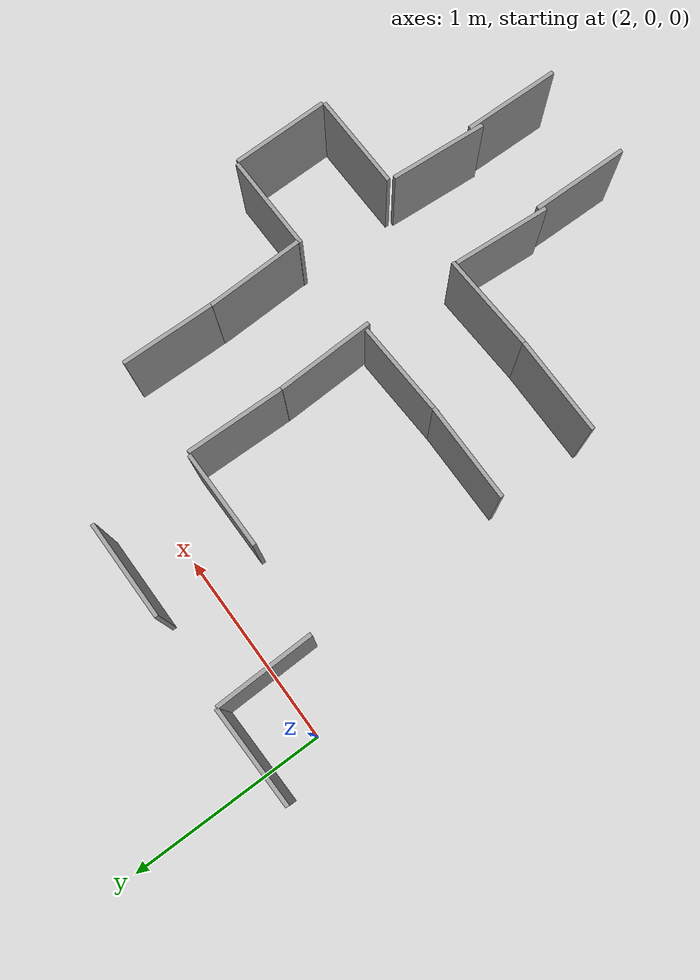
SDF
<sdf version="1.7">
 <world name="default">
  <model name="ground_plane">
   <static>1</static>
   <link name="link">
    <collision name="collision">
     <geometry><plane><normal>0 0 1</normal><size>100 100</size></plane></geometry>
     <surface><friction><ode><mu>100</mu><mu2>50</mu2></ode></friction></surface>
    </collision>
    <visual name="visual">
     <cast_shadows>0</cast_shadows>
     <geometry><plane><normal>0 0 1</normal><size>100 100</size></plane></geometry>
     <material>
      <script><uri>file://media/materials/scripts/gazebo.material</uri><name>Gazebo/Grey</name></script>
     </material>
    </visual>
   </link>
  </model>
  <model name="hsl_module_3">
   <link name="link_2_clone">
    <inertial>
     <mass>1</mass>
     <inertia><ixx>0.01</ixx><ixy>0</ixy><ixz>0</ixz><iyy>0.02</iyy><iyz>0</iyz><izz>0.01</izz></inertia>
    </inertial>
    <pose>0.212503 -0.126383 0 0 -0 0</pose>
    <visual name="visual">
     <geometry><box><size>0.5 0.02 0.5</size></box></geometry>
     <material>
      <lighting>1</lighting>
      <script><uri>file://media/materials/scripts/gazebo.material</uri><name>Gazebo/Grey</name></script>
      <shader type="pixel"><normal_map>__default__</normal_map></shader>
      <ambient>0.3 0.3 0.3 1</ambient>
      <diffuse>0.7 0.7 0.7 1</diffuse>
      <specular>0.01 0.01 0.01 1</specular>
      <emissive>0 0 0 1</emissive>
     </material>
    </visual>
    <collision name="collision">
     <geometry><box><size>0.5 0.02 0.5</size></box></geometry>
     <surface>
      <friction>
       <ode><mu>1</mu><mu2>1</mu2><fdir1>0 0 0</fdir1><slip1>0</slip1><slip2>0</slip2></ode>
       <torsional>
        <coefficient>1</coefficient>
        <patch_radius>0</patch_radius>
        <surface_radius>0</surface_radius>
        <use_patch_radius>1</use_patch_radius>
        <ode><slip>0</slip></ode>
       </torsional>
      </friction>
      <bounce><restitution_coefficient>0</restitution_coefficient><threshold>1e+06</threshold></bounce>
      <contact>
       <collide_without_contact>0</collide_without_contact>
       <collide_without_contact_bitmask>1</collide_without_contact_bitmask>
       <collide_bitmask>1</collide_bitmask>
       <ode>
        <soft_cfm>0</soft_cfm>
        <soft_erp>0.2</soft_erp>
        <kp>1e+13</kp>
        <kd>1</kd>
        <max_vel>0.01</max_vel>
        <min_depth>0</min_depth>
       </ode>
       <bullet>
        <split_impulse>1</split_impulse>
        <split_impulse_penetration_threshold>-0.01</split_impulse_penetration_threshold>
        <soft_cfm>0</soft_cfm>
        <soft_erp>0.2</soft_erp>
        <kp>1e+13</kp>
        <kd>1</kd>
       </bullet>
      </contact>
     </surface>
    </collision>
   </link>
   <link name="link_2_clone_clone">
    <inertial>
     <mass>1</mass>
     <inertia><ixx>0.01</ixx><ixy>0</ixy><ixz>0</ixz><iyy>0.02</iyy><iyz>0</iyz><izz>0.01</izz></inertia>
    </inertial>
    <pose>-0.040799 0.125917 0 0 -0 1.57298</pose>
    <visual name="visual">
     <geometry><box><size>0.5 0.02 0.5</size></box></geometry>
     <material>
      <lighting>1</lighting>
      <script><uri>file://media/materials/scripts/gazebo.material</uri><name>Gazebo/Grey</name></script>
      <shader type="pixel"><normal_map>__default__</normal_map></shader>
      <ambient>0.3 0.3 0.3 1</ambient>
      <diffuse>0.7 0.7 0.7 1</diffuse>
      <specular>0.01 0.01 0.01 1</specular>
      <emissive>0 0 0 1</emissive>
     </material>
    </visual>
    <collision name="collision">
     <geometry><box><size>0.5 0.02 0.5</size></box></geometry>
     <surface>
      <friction>
       <ode><mu>1</mu><mu2>1</mu2><fdir1>0 0 0</fdir1><slip1>0</slip1><slip2>0</slip2></ode>
       <torsional>
        <coefficient>1</coefficient>
        <patch_radius>0</patch_radius>
        <surface_radius>0</surface_radius>
        <use_patch_radius>1</use_patch_radius>
        <ode><slip>0</slip></ode>
       </torsional>
      </friction>
      <bounce><restitution_coefficient>0</restitution_coefficient><threshold>1e+06</threshold></bounce>
      <contact>
       <collide_without_contact>0</collide_without_contact>
       <collide_without_contact_bitmask>1</collide_without_contact_bitmask>
       <collide_bitmask>1</collide_bitmask>
       <ode>
        <soft_cfm>0</soft_cfm>
        <soft_erp>0.2</soft_erp>
        <kp>1e+13</kp>
        <kd>1</kd>
        <max_vel>0.01</max_vel>
        <min_depth>0</min_depth>
       </ode>
       <bullet>
        <split_impulse>1</split_impulse>
        <split_impulse_penetration_threshold>-0.01</split_impulse_penetration_threshold>
        <soft_cfm>0</soft_cfm>
        <soft_erp>0.2</soft_erp>
        <kp>1e+13</kp>
        <kd>1</kd>
       </bullet>
      </contact>
     </surface>
    </collision>
   </link>
   <static>0</static>
   <pose>2.29657 0.135627 0.25 0 -3e-06 -3.1198</pose>
  </model>
  <model name="hsl_module_2_clone_clone_clone_0">
   <link name="link_2_clone">
    <inertial>
     <mass>1</mass>
     <inertia><ixx>0.01</ixx><ixy>0</ixy><ixz>0</ixz><iyy>0.02</iyy><iyz>0</iyz><izz>0.01</izz></inertia>
    </inertial>
    <pose>-0.318213 -0.417987 0.25 0 -0 0</pose>
    <visual name="visual">
     <geometry><box><size>0.5 0.02 0.5</size></box></geometry>
     <material>
      <lighting>1</lighting>
      <script><uri>file://media/materials/scripts/gazebo.material</uri><name>Gazebo/Grey</name></script>
      <shader type="pixel"><normal_map>__default__</normal_map></shader>
      <ambient>0.3 0.3 0.3 1</ambient>
      <diffuse>0.7 0.7 0.7 1</diffuse>
      <specular>0.01 0.01 0.01 1</specular>
      <emissive>0 0 0 1</emissive>
     </material>
    </visual>
    <collision name="collision">
     <geometry><box><size>0.5 0.02 0.5</size></box></geometry>
     <surface>
      <friction>
       <ode><mu>1</mu><mu2>1</mu2><fdir1>0 0 0</fdir1><slip1>0</slip1><slip2>0</slip2></ode>
       <torsional>
        <coefficient>1</coefficient>
        <patch_radius>0</patch_radius>
        <surface_radius>0</surface_radius>
        <use_patch_radius>1</use_patch_radius>
        <ode><slip>0</slip></ode>
       </torsional>
      </friction>
      <bounce><restitution_coefficient>0</restitution_coefficient><threshold>1e+06</threshold></bounce>
      <contact>
       <collide_without_contact>0</collide_without_contact>
       <collide_without_contact_bitmask>1</collide_without_contact_bitmask>
       <collide_bitmask>1</collide_bitmask>
       <ode>
        <soft_cfm>0</soft_cfm>
        <soft_erp>0.2</soft_erp>
        <kp>1e+13</kp>
        <kd>1</kd>
        <max_vel>0.01</max_vel>
        <min_depth>0</min_depth>
       </ode>
       <bullet>
        <split_impulse>1</split_impulse>
        <split_impulse_penetration_threshold>-0.01</split_impulse_penetration_threshold>
        <soft_cfm>0</soft_cfm>
        <soft_erp>0.2</soft_erp>
        <kp>1e+13</kp>
        <kd>1</kd>
       </bullet>
      </contact>
     </surface>
    </collision>
   </link>
   <link name="link_2_clone_clone_0">
    <inertial>
     <mass>1</mass>
     <inertia><ixx>0.01</ixx><ixy>0</ixy><ixz>0</ixz><iyy>0.02</iyy><iyz>0</iyz><izz>0.01</izz></inertia>
    </inertial>
    <pose>-0.324105 0.095839 0.25 0 -0 0</pose>
    <visual name="visual">
     <geometry><box><size>0.5 0.02 0.5</size></box></geometry>
     <material>
      <lighting>1</lighting>
      <script><uri>file://media/materials/scripts/gazebo.material</uri><name>Gazebo/Grey</name></script>
      <shader type="pixel"><normal_map>__default__</normal_map></shader>
      <ambient>0.3 0.3 0.3 1</ambient>
      <diffuse>0.7 0.7 0.7 1</diffuse>
      <specular>0.01 0.01 0.01 1</specular>
      <emissive>0 0 0 1</emissive>
     </material>
    </visual>
    <collision name="collision">
     <geometry><box><size>0.5 0.02 0.5</size></box></geometry>
     <surface>
      <friction>
       <ode><mu>1</mu><mu2>1</mu2><fdir1>0 0 0</fdir1><slip1>0</slip1><slip2>0</slip2></ode>
       <torsional>
        <coefficient>1</coefficient>
        <patch_radius>0</patch_radius>
        <surface_radius>0</surface_radius>
        <use_patch_radius>1</use_patch_radius>
        <ode><slip>0</slip></ode>
       </torsional>
      </friction>
      <bounce><restitution_coefficient>0</restitution_coefficient><threshold>1e+06</threshold></bounce>
      <contact>
       <collide_without_contact>0</collide_without_contact>
       <collide_without_contact_bitmask>1</collide_without_contact_bitmask>
       <collide_bitmask>1</collide_bitmask>
       <ode>
        <soft_cfm>0</soft_cfm>
        <soft_erp>0.2</soft_erp>
        <kp>1e+13</kp>
        <kd>1</kd>
        <max_vel>0.01</max_vel>
        <min_depth>0</min_depth>
       </ode>
       <bullet>
        <split_impulse>1</split_impulse>
        <split_impulse_penetration_threshold>-0.01</split_impulse_penetration_threshold>
        <soft_cfm>0</soft_cfm>
        <soft_erp>0.2</soft_erp>
        <kp>1e+13</kp>
        <kd>1</kd>
       </bullet>
      </contact>
     </surface>
    </collision>
   </link>
   <static>0</static>
   <pose>2.90867 -1.35817 0 1e-06 -0 -0.006934</pose>
  </model>
  <model name="hsl_module_2_clone_clone_0">
   <link name="link_2_clone">
    <inertial>
     <mass>1</mass>
     <inertia><ixx>0.01</ixx><ixy>0</ixy><ixz>0</ixz><iyy>0.02</iyy><iyz>0</iyz><izz>0.01</izz></inertia>
    </inertial>
    <pose>-0.318213 -0.417987 0.25 0 -0 0</pose>
    <visual name="visual">
     <geometry><box><size>0.5 0.02 0.5</size></box></geometry>
     <material>
      <lighting>1</lighting>
      <script><uri>file://media/materials/scripts/gazebo.material</uri><name>Gazebo/Grey</name></script>
      <shader type="pixel"><normal_map>__default__</normal_map></shader>
      <ambient>0.3 0.3 0.3 1</ambient>
      <diffuse>0.7 0.7 0.7 1</diffuse>
      <specular>0.01 0.01 0.01 1</specular>
      <emissive>0 0 0 1</emissive>
     </material>
    </visual>
    <collision name="collision">
     <geometry><box><size>0.5 0.02 0.5</size></box></geometry>
     <surface>
      <friction>
       <ode><mu>1</mu><mu2>1</mu2><fdir1>0 0 0</fdir1><slip1>0</slip1><slip2>0</slip2></ode>
       <torsional>
        <coefficient>1</coefficient>
        <patch_radius>0</patch_radius>
        <surface_radius>0</surface_radius>
        <use_patch_radius>1</use_patch_radius>
        <ode><slip>0</slip></ode>
       </torsional>
      </friction>
      <bounce><restitution_coefficient>0</restitution_coefficient><threshold>1e+06</threshold></bounce>
      <contact>
       <collide_without_contact>0</collide_without_contact>
       <collide_without_contact_bitmask>1</collide_without_contact_bitmask>
       <collide_bitmask>1</collide_bitmask>
       <ode>
        <soft_cfm>0</soft_cfm>
        <soft_erp>0.2</soft_erp>
        <kp>1e+13</kp>
        <kd>1</kd>
        <max_vel>0.01</max_vel>
        <min_depth>0</min_depth>
       </ode>
       <bullet>
        <split_impulse>1</split_impulse>
        <split_impulse_penetration_threshold>-0.01</split_impulse_penetration_threshold>
        <soft_cfm>0</soft_cfm>
        <soft_erp>0.2</soft_erp>
        <kp>1e+13</kp>
        <kd>1</kd>
       </bullet>
      </contact>
     </surface>
    </collision>
   </link>
   <link name="link_2_clone_clone_0">
    <inertial>
     <mass>1</mass>
     <inertia><ixx>0.01</ixx><ixy>0</ixy><ixz>0</ixz><iyy>0.02</iyy><iyz>0</iyz><izz>0.01</izz></inertia>
    </inertial>
    <pose>-0.324105 0.095839 0.25 0 -0 0</pose>
    <visual name="visual">
     <geometry><box><size>0.5 0.02 0.5</size></box></geometry>
     <material>
      <lighting>1</lighting>
      <script><uri>file://media/materials/scripts/gazebo.material</uri><name>Gazebo/Grey</name></script>
      <shader type="pixel"><normal_map>__default__</normal_map></shader>
      <ambient>0.3 0.3 0.3 1</ambient>
      <diffuse>0.7 0.7 0.7 1</diffuse>
      <specular>0.01 0.01 0.01 1</specular>
      <emissive>0 0 0 1</emissive>
     </material>
    </visual>
    <collision name="collision">
     <geometry><box><size>0.5 0.02 0.5</size></box></geometry>
     <surface>
      <friction>
       <ode><mu>1</mu><mu2>1</mu2><fdir1>0 0 0</fdir1><slip1>0</slip1><slip2>0</slip2></ode>
       <torsional>
        <coefficient>1</coefficient>
        <patch_radius>0</patch_radius>
        <surface_radius>0</surface_radius>
        <use_patch_radius>1</use_patch_radius>
        <ode><slip>0</slip></ode>
       </torsional>
      </friction>
      <bounce><restitution_coefficient>0</restitution_coefficient><threshold>1e+06</threshold></bounce>
      <contact>
       <collide_without_contact>0</collide_without_contact>
       <collide_without_contact_bitmask>1</collide_without_contact_bitmask>
       <collide_bitmask>1</collide_bitmask>
       <ode>
        <soft_cfm>0</soft_cfm>
        <soft_erp>0.2</soft_erp>
        <kp>1e+13</kp>
        <kd>1</kd>
        <max_vel>0.01</max_vel>
        <min_depth>0</min_depth>
       </ode>
       <bullet>
        <split_impulse>1</split_impulse>
        <split_impulse_penetration_threshold>-0.01</split_impulse_penetration_threshold>
        <soft_cfm>0</soft_cfm>
        <soft_erp>0.2</soft_erp>
        <kp>1e+13</kp>
        <kd>1</kd>
       </bullet>
      </contact>
     </surface>
    </collision>
   </link>
   <static>0</static>
   <pose>3.38729 -1.33302 -1e-05 1e-06 9e-06 0.044357</pose>
  </model>
  <model name="hsl_module_2_0_clone_clone">
   <link name="link_2_clone">
    <inertial>
     <mass>1</mass>
     <inertia><ixx>0.01</ixx><ixy>0</ixy><ixz>0</ixz><iyy>0.02</iyy><iyz>0</iyz><izz>0.01</izz></inertia>
    </inertial>
    <pose>-0.318213 -0.417987 0.25 0 -0 0</pose>
    <visual name="visual">
     <geometry><box><size>0.5 0.02 0.5</size></box></geometry>
     <material>
      <lighting>1</lighting>
      <script><uri>file://media/materials/scripts/gazebo.material</uri><name>Gazebo/Grey</name></script>
      <shader type="pixel"><normal_map>__default__</normal_map></shader>
      <ambient>0.3 0.3 0.3 1</ambient>
      <diffuse>0.7 0.7 0.7 1</diffuse>
      <specular>0.01 0.01 0.01 1</specular>
      <emissive>0 0 0 1</emissive>
     </material>
    </visual>
    <collision name="collision">
     <geometry><box><size>0.5 0.02 0.5</size></box></geometry>
     <surface>
      <friction>
       <ode><mu>1</mu><mu2>1</mu2><fdir1>0 0 0</fdir1><slip1>0</slip1><slip2>0</slip2></ode>
       <torsional>
        <coefficient>1</coefficient>
        <patch_radius>0</patch_radius>
        <surface_radius>0</surface_radius>
        <use_patch_radius>1</use_patch_radius>
        <ode><slip>0</slip></ode>
       </torsional>
      </friction>
      <bounce><restitution_coefficient>0</restitution_coefficient><threshold>1e+06</threshold></bounce>
      <contact>
       <collide_without_contact>0</collide_without_contact>
       <collide_without_contact_bitmask>1</collide_without_contact_bitmask>
       <collide_bitmask>1</collide_bitmask>
       <ode>
        <soft_cfm>0</soft_cfm>
        <soft_erp>0.2</soft_erp>
        <kp>1e+13</kp>
        <kd>1</kd>
        <max_vel>0.01</max_vel>
        <min_depth>0</min_depth>
       </ode>
       <bullet>
        <split_impulse>1</split_impulse>
        <split_impulse_penetration_threshold>-0.01</split_impulse_penetration_threshold>
        <soft_cfm>0</soft_cfm>
        <soft_erp>0.2</soft_erp>
        <kp>1e+13</kp>
        <kd>1</kd>
       </bullet>
      </contact>
     </surface>
    </collision>
   </link>
   <link name="link_2_clone_clone_0">
    <inertial>
     <mass>1</mass>
     <inertia><ixx>0.01</ixx><ixy>0</ixy><ixz>0</ixz><iyy>0.02</iyy><iyz>0</iyz><izz>0.01</izz></inertia>
    </inertial>
    <pose>-0.324105 0.095839 0.25 0 -0 0</pose>
    <visual name="visual">
     <geometry><box><size>0.5 0.02 0.5</size></box></geometry>
     <material>
      <lighting>1</lighting>
      <script><uri>file://media/materials/scripts/gazebo.material</uri><name>Gazebo/Grey</name></script>
      <shader type="pixel"><normal_map>__default__</normal_map></shader>
      <ambient>0.3 0.3 0.3 1</ambient>
      <diffuse>0.7 0.7 0.7 1</diffuse>
      <specular>0.01 0.01 0.01 1</specular>
      <emissive>0 0 0 1</emissive>
     </material>
    </visual>
    <collision name="collision">
     <geometry><box><size>0.5 0.02 0.5</size></box></geometry>
     <surface>
      <friction>
       <ode><mu>1</mu><mu2>1</mu2><fdir1>0 0 0</fdir1><slip1>0</slip1><slip2>0</slip2></ode>
       <torsional>
        <coefficient>1</coefficient>
        <patch_radius>0</patch_radius>
        <surface_radius>0</surface_radius>
        <use_patch_radius>1</use_patch_radius>
        <ode><slip>0</slip></ode>
       </torsional>
      </friction>
      <bounce><restitution_coefficient>0</restitution_coefficient><threshold>1e+06</threshold></bounce>
      <contact>
       <collide_without_contact>0</collide_without_contact>
       <collide_without_contact_bitmask>1</collide_without_contact_bitmask>
       <collide_bitmask>1</collide_bitmask>
       <ode>
        <soft_cfm>0</soft_cfm>
        <soft_erp>0.2</soft_erp>
        <kp>1e+13</kp>
        <kd>1</kd>
        <max_vel>0.01</max_vel>
        <min_depth>0</min_depth>
       </ode>
       <bullet>
        <split_impulse>1</split_impulse>
        <split_impulse_penetration_threshold>-0.01</split_impulse_penetration_threshold>
        <soft_cfm>0</soft_cfm>
        <soft_erp>0.2</soft_erp>
        <kp>1e+13</kp>
        <kd>1</kd>
       </bullet>
      </contact>
     </surface>
    </collision>
   </link>
   <static>0</static>
   <pose>3.74998 -1.31952 -0 -0 3e-06 -1.53175</pose>
  </model>
  <model name="hsl_module_2_0_clone_clone_0">
   <link name="link_2_clone">
    <inertial>
     <mass>1</mass>
     <inertia><ixx>0.01</ixx><ixy>0</ixy><ixz>0</ixz><iyy>0.02</iyy><iyz>0</iyz><izz>0.01</izz></inertia>
    </inertial>
    <pose>-0.318213 -0.417987 0.25 0 -0 0</pose>
    <visual name="visual">
     <geometry><box><size>0.5 0.02 0.5</size></box></geometry>
     <material>
      <lighting>1</lighting>
      <script><uri>file://media/materials/scripts/gazebo.material</uri><name>Gazebo/Grey</name></script>
      <shader type="pixel"><normal_map>__default__</normal_map></shader>
      <ambient>0.3 0.3 0.3 1</ambient>
      <diffuse>0.7 0.7 0.7 1</diffuse>
      <specular>0.01 0.01 0.01 1</specular>
      <emissive>0 0 0 1</emissive>
     </material>
    </visual>
    <collision name="collision">
     <geometry><box><size>0.5 0.02 0.5</size></box></geometry>
     <surface>
      <friction>
       <ode><mu>1</mu><mu2>1</mu2><fdir1>0 0 0</fdir1><slip1>0</slip1><slip2>0</slip2></ode>
       <torsional>
        <coefficient>1</coefficient>
        <patch_radius>0</patch_radius>
        <surface_radius>0</surface_radius>
        <use_patch_radius>1</use_patch_radius>
        <ode><slip>0</slip></ode>
       </torsional>
      </friction>
      <bounce><restitution_coefficient>0</restitution_coefficient><threshold>1e+06</threshold></bounce>
      <contact>
       <collide_without_contact>0</collide_without_contact>
       <collide_without_contact_bitmask>1</collide_without_contact_bitmask>
       <collide_bitmask>1</collide_bitmask>
       <ode>
        <soft_cfm>0</soft_cfm>
        <soft_erp>0.2</soft_erp>
        <kp>1e+13</kp>
        <kd>1</kd>
        <max_vel>0.01</max_vel>
        <min_depth>0</min_depth>
       </ode>
       <bullet>
        <split_impulse>1</split_impulse>
        <split_impulse_penetration_threshold>-0.01</split_impulse_penetration_threshold>
        <soft_cfm>0</soft_cfm>
        <soft_erp>0.2</soft_erp>
        <kp>1e+13</kp>
        <kd>1</kd>
       </bullet>
      </contact>
     </surface>
    </collision>
   </link>
   <link name="link_2_clone_clone_0">
    <inertial>
     <mass>1</mass>
     <inertia><ixx>0.01</ixx><ixy>0</ixy><ixz>0</ixz><iyy>0.02</iyy><iyz>0</iyz><izz>0.01</izz></inertia>
    </inertial>
    <pose>-0.324105 0.095839 0.25 0 -0 0</pose>
    <visual name="visual">
     <geometry><box><size>0.5 0.02 0.5</size></box></geometry>
     <material>
      <lighting>1</lighting>
      <script><uri>file://media/materials/scripts/gazebo.material</uri><name>Gazebo/Grey</name></script>
      <shader type="pixel"><normal_map>__default__</normal_map></shader>
      <ambient>0.3 0.3 0.3 1</ambient>
      <diffuse>0.7 0.7 0.7 1</diffuse>
      <specular>0.01 0.01 0.01 1</specular>
      <emissive>0 0 0 1</emissive>
     </material>
    </visual>
    <collision name="collision">
     <geometry><box><size>0.5 0.02 0.5</size></box></geometry>
     <surface>
      <friction>
       <ode><mu>1</mu><mu2>1</mu2><fdir1>0 0 0</fdir1><slip1>0</slip1><slip2>0</slip2></ode>
       <torsional>
        <coefficient>1</coefficient>
        <patch_radius>0</patch_radius>
        <surface_radius>0</surface_radius>
        <use_patch_radius>1</use_patch_radius>
        <ode><slip>0</slip></ode>
       </torsional>
      </friction>
      <bounce><restitution_coefficient>0</restitution_coefficient><threshold>1e+06</threshold></bounce>
      <contact>
       <collide_without_contact>0</collide_without_contact>
       <collide_without_contact_bitmask>1</collide_without_contact_bitmask>
       <collide_bitmask>1</collide_bitmask>
       <ode>
        <soft_cfm>0</soft_cfm>
        <soft_erp>0.2</soft_erp>
        <kp>1e+13</kp>
        <kd>1</kd>
        <max_vel>0.01</max_vel>
        <min_depth>0</min_depth>
       </ode>
       <bullet>
        <split_impulse>1</split_impulse>
        <split_impulse_penetration_threshold>-0.01</split_impulse_penetration_threshold>
        <soft_cfm>0</soft_cfm>
        <soft_erp>0.2</soft_erp>
        <kp>1e+13</kp>
        <kd>1</kd>
       </bullet>
      </contact>
     </surface>
    </collision>
   </link>
   <static>0</static>
   <pose>3.70893 -2.3572 -7e-06 0 1.2e-05 -1.62867</pose>
  </model>
  <model name="hsl_module_1_clone_clone">
   <link name="link_2_clone">
    <inertial>
     <mass>1</mass>
     <inertia><ixx>0.01</ixx><ixy>0</ixy><ixz>0</ixz><iyy>0.02</iyy><iyz>0</iyz><izz>0.01</izz></inertia>
    </inertial>
    <pose>0.088798 -0.257146 0 0 -0 0</pose>
    <visual name="visual">
     <geometry><box><size>0.5 0.02 0.5</size></box></geometry>
     <material>
      <lighting>1</lighting>
      <script><uri>file://media/materials/scripts/gazebo.material</uri><name>Gazebo/Grey</name></script>
      <shader type="pixel"><normal_map>__default__</normal_map></shader>
      <ambient>0.3 0.3 0.3 1</ambient>
      <diffuse>0.7 0.7 0.7 1</diffuse>
      <specular>0.01 0.01 0.01 1</specular>
      <emissive>0 0 0 1</emissive>
     </material>
    </visual>
    <collision name="collision">
     <geometry><box><size>0.5 0.02 0.5</size></box></geometry>
     <surface>
      <friction>
       <ode><mu>1</mu><mu2>1</mu2><fdir1>0 0 0</fdir1><slip1>0</slip1><slip2>0</slip2></ode>
       <torsional>
        <coefficient>1</coefficient>
        <patch_radius>0</patch_radius>
        <surface_radius>0</surface_radius>
        <use_patch_radius>1</use_patch_radius>
        <ode><slip>0</slip></ode>
       </torsional>
      </friction>
      <bounce><restitution_coefficient>0</restitution_coefficient><threshold>1e+06</threshold></bounce>
      <contact>
       <collide_without_contact>0</collide_without_contact>
       <collide_without_contact_bitmask>1</collide_without_contact_bitmask>
       <collide_bitmask>1</collide_bitmask>
       <ode>
        <soft_cfm>0</soft_cfm>
        <soft_erp>0.2</soft_erp>
        <kp>1e+13</kp>
        <kd>1</kd>
        <max_vel>0.01</max_vel>
        <min_depth>0</min_depth>
       </ode>
       <bullet>
        <split_impulse>1</split_impulse>
        <split_impulse_penetration_threshold>-0.01</split_impulse_penetration_threshold>
        <soft_cfm>0</soft_cfm>
        <soft_erp>0.2</soft_erp>
        <kp>1e+13</kp>
        <kd>1</kd>
       </bullet>
      </contact>
     </surface>
    </collision>
   </link>
   <link name="link_2_clone_clone">
    <inertial>
     <mass>1</mass>
     <inertia><ixx>0.01</ixx><ixy>0</ixy><ixz>0</ixz><iyy>0.02</iyy><iyz>0</iyz><izz>0.01</izz></inertia>
    </inertial>
    <pose>-0.171704 0.000465 0 0 -0 1.57697</pose>
    <visual name="visual">
     <geometry><box><size>0.5 0.02 0.5</size></box></geometry>
     <material>
      <lighting>1</lighting>
      <script><uri>file://media/materials/scripts/gazebo.material</uri><name>Gazebo/Grey</name></script>
      <shader type="pixel"><normal_map>__default__</normal_map></shader>
      <ambient>0.3 0.3 0.3 1</ambient>
      <diffuse>0.7 0.7 0.7 1</diffuse>
      <specular>0.01 0.01 0.01 1</specular>
      <emissive>0 0 0 1</emissive>
     </material>
    </visual>
    <collision name="collision">
     <geometry><box><size>0.5 0.02 0.5</size></box></geometry>
     <surface>
      <friction>
       <ode><mu>1</mu><mu2>1</mu2><fdir1>0 0 0</fdir1><slip1>0</slip1><slip2>0</slip2></ode>
       <torsional>
        <coefficient>1</coefficient>
        <patch_radius>0</patch_radius>
        <surface_radius>0</surface_radius>
        <use_patch_radius>1</use_patch_radius>
        <ode><slip>0</slip></ode>
       </torsional>
      </friction>
      <bounce><restitution_coefficient>0</restitution_coefficient><threshold>1e+06</threshold></bounce>
      <contact>
       <collide_without_contact>0</collide_without_contact>
       <collide_without_contact_bitmask>1</collide_without_contact_bitmask>
       <collide_bitmask>1</collide_bitmask>
       <ode>
        <soft_cfm>0</soft_cfm>
        <soft_erp>0.2</soft_erp>
        <kp>1e+13</kp>
        <kd>1</kd>
        <max_vel>0.01</max_vel>
        <min_depth>0</min_depth>
       </ode>
       <bullet>
        <split_impulse>1</split_impulse>
        <split_impulse_penetration_threshold>-0.01</split_impulse_penetration_threshold>
        <soft_cfm>0</soft_cfm>
        <soft_erp>0.2</soft_erp>
        <kp>1e+13</kp>
        <kd>1</kd>
       </bullet>
      </contact>
     </surface>
    </collision>
   </link>
   <link name="link_2_clone_clone_0">
    <inertial>
     <mass>1</mass>
     <inertia><ixx>0.01</ixx><ixy>0</ixy><ixz>0</ixz><iyy>0.02</iyy><iyz>0</iyz><izz>0.01</izz></inertia>
    </inertial>
    <pose>0.082906 0.256681 0 0 -0 0</pose>
    <visual name="visual">
     <geometry><box><size>0.5 0.02 0.5</size></box></geometry>
     <material>
      <lighting>1</lighting>
      <script><uri>file://media/materials/scripts/gazebo.material</uri><name>Gazebo/Grey</name></script>
      <shader type="pixel"><normal_map>__default__</normal_map></shader>
      <ambient>0.3 0.3 0.3 1</ambient>
      <diffuse>0.7 0.7 0.7 1</diffuse>
      <specular>0.01 0.01 0.01 1</specular>
      <emissive>0 0 0 1</emissive>
     </material>
    </visual>
    <collision name="collision">
     <geometry><box><size>0.5 0.02 0.5</size></box></geometry>
     <surface>
      <friction>
       <ode><mu>1</mu><mu2>1</mu2><fdir1>0 0 0</fdir1><slip1>0</slip1><slip2>0</slip2></ode>
       <torsional>
        <coefficient>1</coefficient>
        <patch_radius>0</patch_radius>
        <surface_radius>0</surface_radius>
        <use_patch_radius>1</use_patch_radius>
        <ode><slip>0</slip></ode>
       </torsional>
      </friction>
      <bounce><restitution_coefficient>0</restitution_coefficient><threshold>1e+06</threshold></bounce>
      <contact>
       <collide_without_contact>0</collide_without_contact>
       <collide_without_contact_bitmask>1</collide_without_contact_bitmask>
       <collide_bitmask>1</collide_bitmask>
       <ode>
        <soft_cfm>0</soft_cfm>
        <soft_erp>0.2</soft_erp>
        <kp>1e+13</kp>
        <kd>1</kd>
        <max_vel>0.01</max_vel>
        <min_depth>0</min_depth>
       </ode>
       <bullet>
        <split_impulse>1</split_impulse>
        <split_impulse_penetration_threshold>-0.01</split_impulse_penetration_threshold>
        <soft_cfm>0</soft_cfm>
        <soft_erp>0.2</soft_erp>
        <kp>1e+13</kp>
        <kd>1</kd>
       </bullet>
      </contact>
     </surface>
    </collision>
   </link>
   <static>0</static>
   <pose>4.1727 -1.50086 0.25 -1e-06 0 -3.12819</pose>
  </model>
  <model name="hsl_module_2_0_clone_clone_clone">
   <link name="link_2_clone">
    <inertial>
     <mass>1</mass>
     <inertia><ixx>0.01</ixx><ixy>0</ixy><ixz>0</ixz><iyy>0.02</iyy><iyz>0</iyz><izz>0.01</izz></inertia>
    </inertial>
    <pose>-0.318213 -0.417987 0.25 0 -0 0</pose>
    <visual name="visual">
     <geometry><box><size>0.5 0.02 0.5</size></box></geometry>
     <material>
      <lighting>1</lighting>
      <script><uri>file://media/materials/scripts/gazebo.material</uri><name>Gazebo/Grey</name></script>
      <shader type="pixel"><normal_map>__default__</normal_map></shader>
      <ambient>0.3 0.3 0.3 1</ambient>
      <diffuse>0.7 0.7 0.7 1</diffuse>
      <specular>0.01 0.01 0.01 1</specular>
      <emissive>0 0 0 1</emissive>
     </material>
    </visual>
    <collision name="collision">
     <geometry><box><size>0.5 0.02 0.5</size></box></geometry>
     <surface>
      <friction>
       <ode><mu>1</mu><mu2>1</mu2><fdir1>0 0 0</fdir1><slip1>0</slip1><slip2>0</slip2></ode>
       <torsional>
        <coefficient>1</coefficient>
        <patch_radius>0</patch_radius>
        <surface_radius>0</surface_radius>
        <use_patch_radius>1</use_patch_radius>
        <ode><slip>0</slip></ode>
       </torsional>
      </friction>
      <bounce><restitution_coefficient>0</restitution_coefficient><threshold>1e+06</threshold></bounce>
      <contact>
       <collide_without_contact>0</collide_without_contact>
       <collide_without_contact_bitmask>1</collide_without_contact_bitmask>
       <collide_bitmask>1</collide_bitmask>
       <ode>
        <soft_cfm>0</soft_cfm>
        <soft_erp>0.2</soft_erp>
        <kp>1e+13</kp>
        <kd>1</kd>
        <max_vel>0.01</max_vel>
        <min_depth>0</min_depth>
       </ode>
       <bullet>
        <split_impulse>1</split_impulse>
        <split_impulse_penetration_threshold>-0.01</split_impulse_penetration_threshold>
        <soft_cfm>0</soft_cfm>
        <soft_erp>0.2</soft_erp>
        <kp>1e+13</kp>
        <kd>1</kd>
       </bullet>
      </contact>
     </surface>
    </collision>
   </link>
   <link name="link_2_clone_clone_0">
    <inertial>
     <mass>1</mass>
     <inertia><ixx>0.01</ixx><ixy>0</ixy><ixz>0</ixz><iyy>0.02</iyy><iyz>0</iyz><izz>0.01</izz></inertia>
    </inertial>
    <pose>-0.324105 0.095839 0.25 0 -0 0</pose>
    <visual name="visual">
     <geometry><box><size>0.5 0.02 0.5</size></box></geometry>
     <material>
      <lighting>1</lighting>
      <script><uri>file://media/materials/scripts/gazebo.material</uri><name>Gazebo/Grey</name></script>
      <shader type="pixel"><normal_map>__default__</normal_map></shader>
      <ambient>0.3 0.3 0.3 1</ambient>
      <diffuse>0.7 0.7 0.7 1</diffuse>
      <specular>0.01 0.01 0.01 1</specular>
      <emissive>0 0 0 1</emissive>
     </material>
    </visual>
    <collision name="collision">
     <geometry><box><size>0.5 0.02 0.5</size></box></geometry>
     <surface>
      <friction>
       <ode><mu>1</mu><mu2>1</mu2><fdir1>0 0 0</fdir1><slip1>0</slip1><slip2>0</slip2></ode>
       <torsional>
        <coefficient>1</coefficient>
        <patch_radius>0</patch_radius>
        <surface_radius>0</surface_radius>
        <use_patch_radius>1</use_patch_radius>
        <ode><slip>0</slip></ode>
       </torsional>
      </friction>
      <bounce><restitution_coefficient>0</restitution_coefficient><threshold>1e+06</threshold></bounce>
      <contact>
       <collide_without_contact>0</collide_without_contact>
       <collide_without_contact_bitmask>1</collide_without_contact_bitmask>
       <collide_bitmask>1</collide_bitmask>
       <ode>
        <soft_cfm>0</soft_cfm>
        <soft_erp>0.2</soft_erp>
        <kp>1e+13</kp>
        <kd>1</kd>
        <max_vel>0.01</max_vel>
        <min_depth>0</min_depth>
       </ode>
       <bullet>
        <split_impulse>1</split_impulse>
        <split_impulse_penetration_threshold>-0.01</split_impulse_penetration_threshold>
        <soft_cfm>0</soft_cfm>
        <soft_erp>0.2</soft_erp>
        <kp>1e+13</kp>
        <kd>1</kd>
       </bullet>
      </contact>
     </surface>
    </collision>
   </link>
   <static>0</static>
   <pose>3.7278 -0.839937 -7e-06 -1e-06 1.2e-05 -1.58119</pose>
  </model>
  <model name="hsl_module_2_clone_clone_clone_1">
   <link name="link_2_clone">
    <inertial>
     <mass>1</mass>
     <inertia><ixx>0.01</ixx><ixy>0</ixy><ixz>0</ixz><iyy>0.02</iyy><iyz>0</iyz><izz>0.01</izz></inertia>
    </inertial>
    <pose>-0.318213 -0.417987 0.25 0 -0 0</pose>
    <visual name="visual">
     <geometry><box><size>0.5 0.02 0.5</size></box></geometry>
     <material>
      <lighting>1</lighting>
      <script><uri>file://media/materials/scripts/gazebo.material</uri><name>Gazebo/Grey</name></script>
      <shader type="pixel"><normal_map>__default__</normal_map></shader>
      <ambient>0.3 0.3 0.3 1</ambient>
      <diffuse>0.7 0.7 0.7 1</diffuse>
      <specular>0.01 0.01 0.01 1</specular>
      <emissive>0 0 0 1</emissive>
     </material>
    </visual>
    <collision name="collision">
     <geometry><box><size>0.5 0.02 0.5</size></box></geometry>
     <surface>
      <friction>
       <ode><mu>1</mu><mu2>1</mu2><fdir1>0 0 0</fdir1><slip1>0</slip1><slip2>0</slip2></ode>
       <torsional>
        <coefficient>1</coefficient>
        <patch_radius>0</patch_radius>
        <surface_radius>0</surface_radius>
        <use_patch_radius>1</use_patch_radius>
        <ode><slip>0</slip></ode>
       </torsional>
      </friction>
      <bounce><restitution_coefficient>0</restitution_coefficient><threshold>1e+06</threshold></bounce>
      <contact>
       <collide_without_contact>0</collide_without_contact>
       <collide_without_contact_bitmask>1</collide_without_contact_bitmask>
       <collide_bitmask>1</collide_bitmask>
       <ode>
        <soft_cfm>0</soft_cfm>
        <soft_erp>0.2</soft_erp>
        <kp>1e+13</kp>
        <kd>1</kd>
        <max_vel>0.01</max_vel>
        <min_depth>0</min_depth>
       </ode>
       <bullet>
        <split_impulse>1</split_impulse>
        <split_impulse_penetration_threshold>-0.01</split_impulse_penetration_threshold>
        <soft_cfm>0</soft_cfm>
        <soft_erp>0.2</soft_erp>
        <kp>1e+13</kp>
        <kd>1</kd>
       </bullet>
      </contact>
     </surface>
    </collision>
   </link>
   <link name="link_2_clone_clone_0">
    <inertial>
     <mass>1</mass>
     <inertia><ixx>0.01</ixx><ixy>0</ixy><ixz>0</ixz><iyy>0.02</iyy><iyz>0</iyz><izz>0.01</izz></inertia>
    </inertial>
    <pose>-0.324105 0.095839 0.25 0 -0 0</pose>
    <visual name="visual">
     <geometry><box><size>0.5 0.02 0.5</size></box></geometry>
     <material>
      <lighting>1</lighting>
      <script><uri>file://media/materials/scripts/gazebo.material</uri><name>Gazebo/Grey</name></script>
      <shader type="pixel"><normal_map>__default__</normal_map></shader>
      <ambient>0.3 0.3 0.3 1</ambient>
      <diffuse>0.7 0.7 0.7 1</diffuse>
      <specular>0.01 0.01 0.01 1</specular>
      <emissive>0 0 0 1</emissive>
     </material>
    </visual>
    <collision name="collision">
     <geometry><box><size>0.5 0.02 0.5</size></box></geometry>
     <surface>
      <friction>
       <ode><mu>1</mu><mu2>1</mu2><fdir1>0 0 0</fdir1><slip1>0</slip1><slip2>0</slip2></ode>
       <torsional>
        <coefficient>1</coefficient>
        <patch_radius>0</patch_radius>
        <surface_radius>0</surface_radius>
        <use_patch_radius>1</use_patch_radius>
        <ode><slip>0</slip></ode>
       </torsional>
      </friction>
      <bounce><restitution_coefficient>0</restitution_coefficient><threshold>1e+06</threshold></bounce>
      <contact>
       <collide_without_contact>0</collide_without_contact>
       <collide_without_contact_bitmask>1</collide_without_contact_bitmask>
       <collide_bitmask>1</collide_bitmask>
       <ode>
        <soft_cfm>0</soft_cfm>
        <soft_erp>0.2</soft_erp>
        <kp>1e+13</kp>
        <kd>1</kd>
        <max_vel>0.01</max_vel>
        <min_depth>0</min_depth>
       </ode>
       <bullet>
        <split_impulse>1</split_impulse>
        <split_impulse_penetration_threshold>-0.01</split_impulse_penetration_threshold>
        <soft_cfm>0</soft_cfm>
        <soft_erp>0.2</soft_erp>
        <kp>1e+13</kp>
        <kd>1</kd>
       </bullet>
      </contact>
     </surface>
    </collision>
   </link>
   <static>0</static>
   <pose>3.37124 0.153078 2e-06 0 -3e-06 0.000243</pose>
  </model>
  <model name="hsl_module_2_0_clone_clone_0_clone">
   <link name="link_2_clone">
    <inertial>
     <mass>1</mass>
     <inertia><ixx>0.01</ixx><ixy>0</ixy><ixz>0</ixz><iyy>0.02</iyy><iyz>0</iyz><izz>0.01</izz></inertia>
    </inertial>
    <pose>-0.318213 -0.417987 0.25 0 -0 0</pose>
    <visual name="visual">
     <geometry><box><size>0.5 0.02 0.5</size></box></geometry>
     <material>
      <lighting>1</lighting>
      <script><uri>file://media/materials/scripts/gazebo.material</uri><name>Gazebo/Grey</name></script>
      <shader type="pixel"><normal_map>__default__</normal_map></shader>
      <ambient>0.3 0.3 0.3 1</ambient>
      <diffuse>0.7 0.7 0.7 1</diffuse>
      <specular>0.01 0.01 0.01 1</specular>
      <emissive>0 0 0 1</emissive>
     </material>
    </visual>
    <collision name="collision">
     <geometry><box><size>0.5 0.02 0.5</size></box></geometry>
     <surface>
      <friction>
       <ode><mu>1</mu><mu2>1</mu2><fdir1>0 0 0</fdir1><slip1>0</slip1><slip2>0</slip2></ode>
       <torsional>
        <coefficient>1</coefficient>
        <patch_radius>0</patch_radius>
        <surface_radius>0</surface_radius>
        <use_patch_radius>1</use_patch_radius>
        <ode><slip>0</slip></ode>
       </torsional>
      </friction>
      <bounce><restitution_coefficient>0</restitution_coefficient><threshold>1e+06</threshold></bounce>
      <contact>
       <collide_without_contact>0</collide_without_contact>
       <collide_without_contact_bitmask>1</collide_without_contact_bitmask>
       <collide_bitmask>1</collide_bitmask>
       <ode>
        <soft_cfm>0</soft_cfm>
        <soft_erp>0.2</soft_erp>
        <kp>1e+13</kp>
        <kd>1</kd>
        <max_vel>0.01</max_vel>
        <min_depth>0</min_depth>
       </ode>
       <bullet>
        <split_impulse>1</split_impulse>
        <split_impulse_penetration_threshold>-0.01</split_impulse_penetration_threshold>
        <soft_cfm>0</soft_cfm>
        <soft_erp>0.2</soft_erp>
        <kp>1e+13</kp>
        <kd>1</kd>
       </bullet>
      </contact>
     </surface>
    </collision>
   </link>
   <link name="link_2_clone_clone_0">
    <inertial>
     <mass>1</mass>
     <inertia><ixx>0.01</ixx><ixy>0</ixy><ixz>0</ixz><iyy>0.02</iyy><iyz>0</iyz><izz>0.01</izz></inertia>
    </inertial>
    <pose>-0.324105 0.095839 0.25 0 -0 0</pose>
    <visual name="visual">
     <geometry><box><size>0.5 0.02 0.5</size></box></geometry>
     <material>
      <lighting>1</lighting>
      <script><uri>file://media/materials/scripts/gazebo.material</uri><name>Gazebo/Grey</name></script>
      <shader type="pixel"><normal_map>__default__</normal_map></shader>
      <ambient>0.3 0.3 0.3 1</ambient>
      <diffuse>0.7 0.7 0.7 1</diffuse>
      <specular>0.01 0.01 0.01 1</specular>
      <emissive>0 0 0 1</emissive>
     </material>
    </visual>
    <collision name="collision">
     <geometry><box><size>0.5 0.02 0.5</size></box></geometry>
     <surface>
      <friction>
       <ode><mu>1</mu><mu2>1</mu2><fdir1>0 0 0</fdir1><slip1>0</slip1><slip2>0</slip2></ode>
       <torsional>
        <coefficient>1</coefficient>
        <patch_radius>0</patch_radius>
        <surface_radius>0</surface_radius>
        <use_patch_radius>1</use_patch_radius>
        <ode><slip>0</slip></ode>
       </torsional>
      </friction>
      <bounce><restitution_coefficient>0</restitution_coefficient><threshold>1e+06</threshold></bounce>
      <contact>
       <collide_without_contact>0</collide_without_contact>
       <collide_without_contact_bitmask>1</collide_without_contact_bitmask>
       <collide_bitmask>1</collide_bitmask>
       <ode>
        <soft_cfm>0</soft_cfm>
        <soft_erp>0.2</soft_erp>
        <kp>1e+13</kp>
        <kd>1</kd>
        <max_vel>0.01</max_vel>
        <min_depth>0</min_depth>
       </ode>
       <bullet>
        <split_impulse>1</split_impulse>
        <split_impulse_penetration_threshold>-0.01</split_impulse_penetration_threshold>
        <soft_cfm>0</soft_cfm>
        <soft_erp>0.2</soft_erp>
        <kp>1e+13</kp>
        <kd>1</kd>
       </bullet>
      </contact>
     </surface>
    </collision>
   </link>
   <static>0</static>
   <pose>3.7331 -2.80376 -0 -1e-06 0 -1.5754</pose>
  </model>
 </world>
</sdf>
